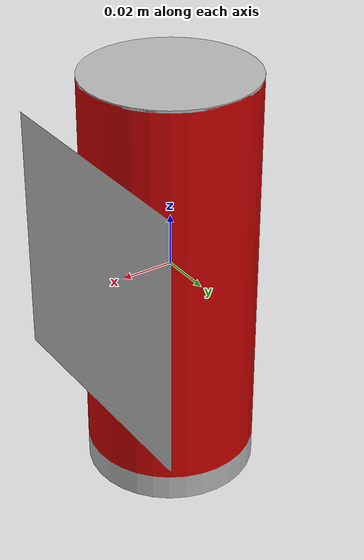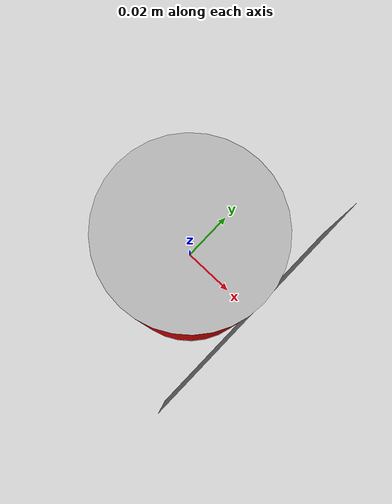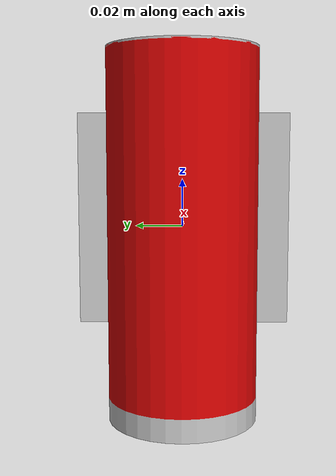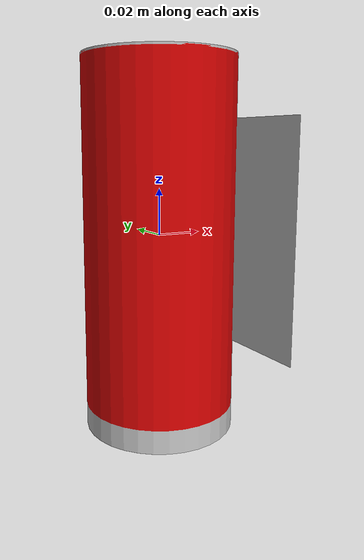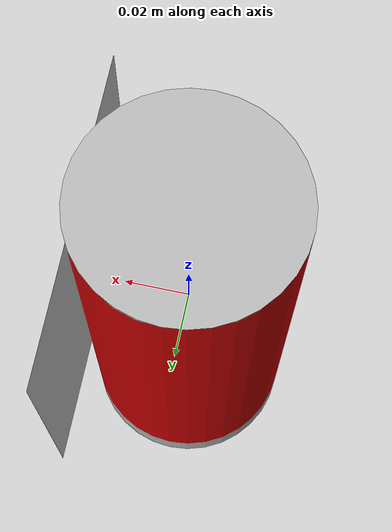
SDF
<?xml version='1.0'?>
<sdf version="1.4">
<model name="can_id0">
  <pose>0 0 0 0 0 0</pose>
    <link name="link">
      <inertial>
        <mass>1.0</mass>
        <inertia>
          <ixx>0.081</ixx>
          <ixy>0.0</ixy>
          <ixz>0.0</ixz>
          <iyy>0.081</iyy>
          <iyz>0.0</iyz>
          <izz>0.081</izz>
        </inertia>
      </inertial>
      <collision name="collision">
        <geometry>
          <mesh>
            <uri>model://can_id0/meshes/can_id0.dae</uri>
          </mesh>
        </geometry>
      </collision>
      <visual name="visual">
        <geometry>
          <mesh>
          <uri>model://can_id0/meshes/can_id0.dae</uri>
          </mesh>
        </geometry>
      </visual>
    </link>
  </model>
</sdf>
